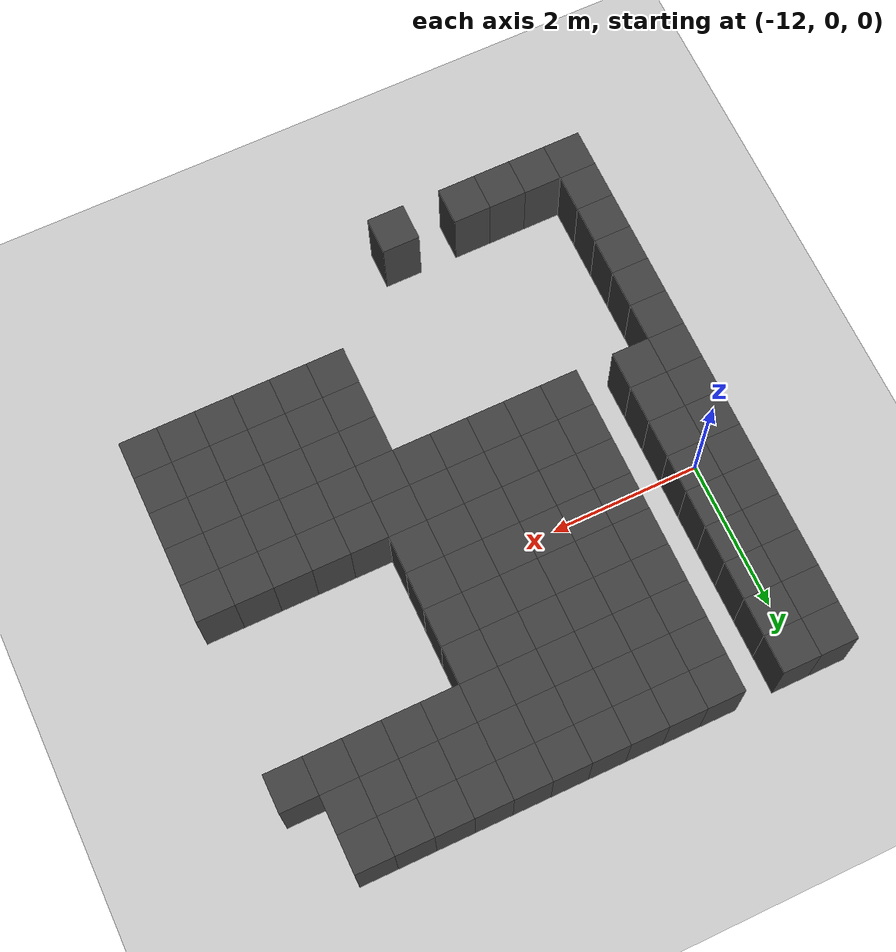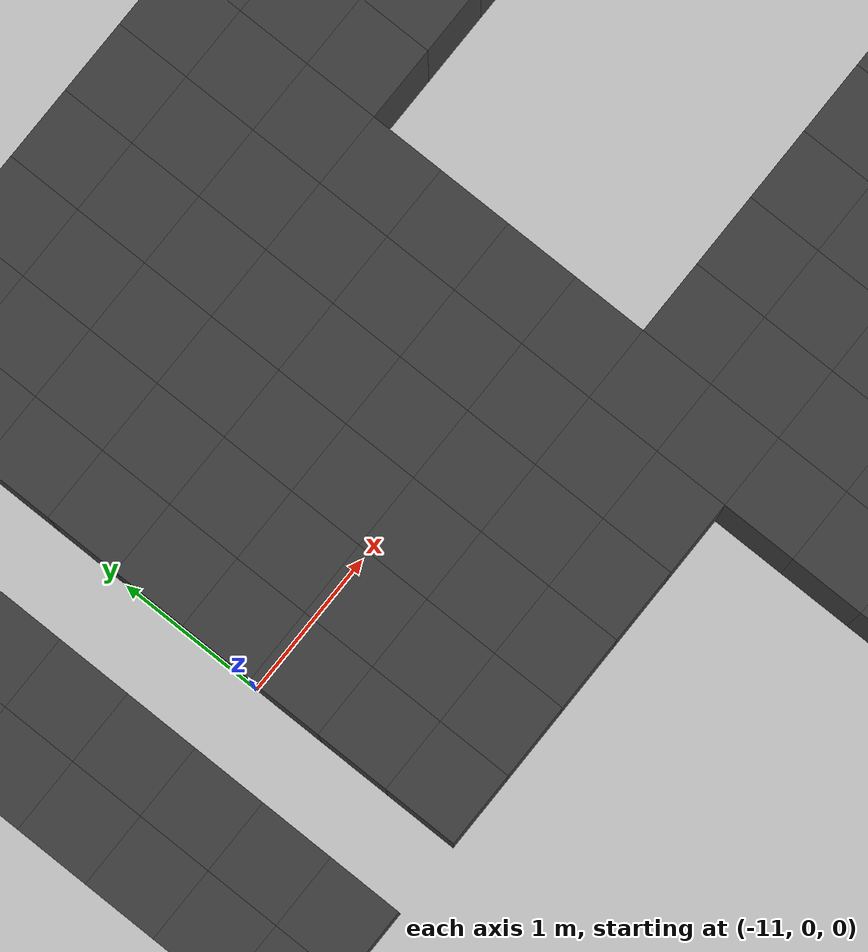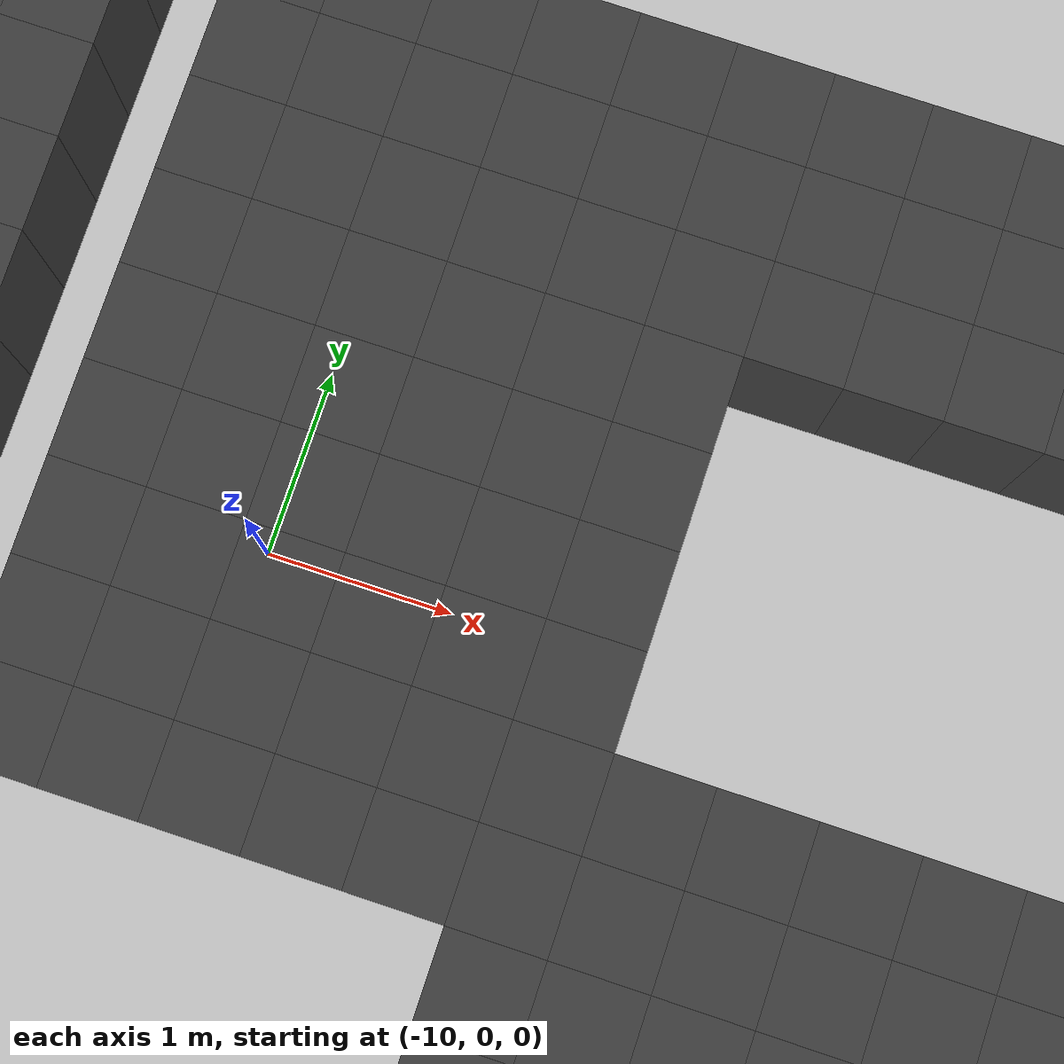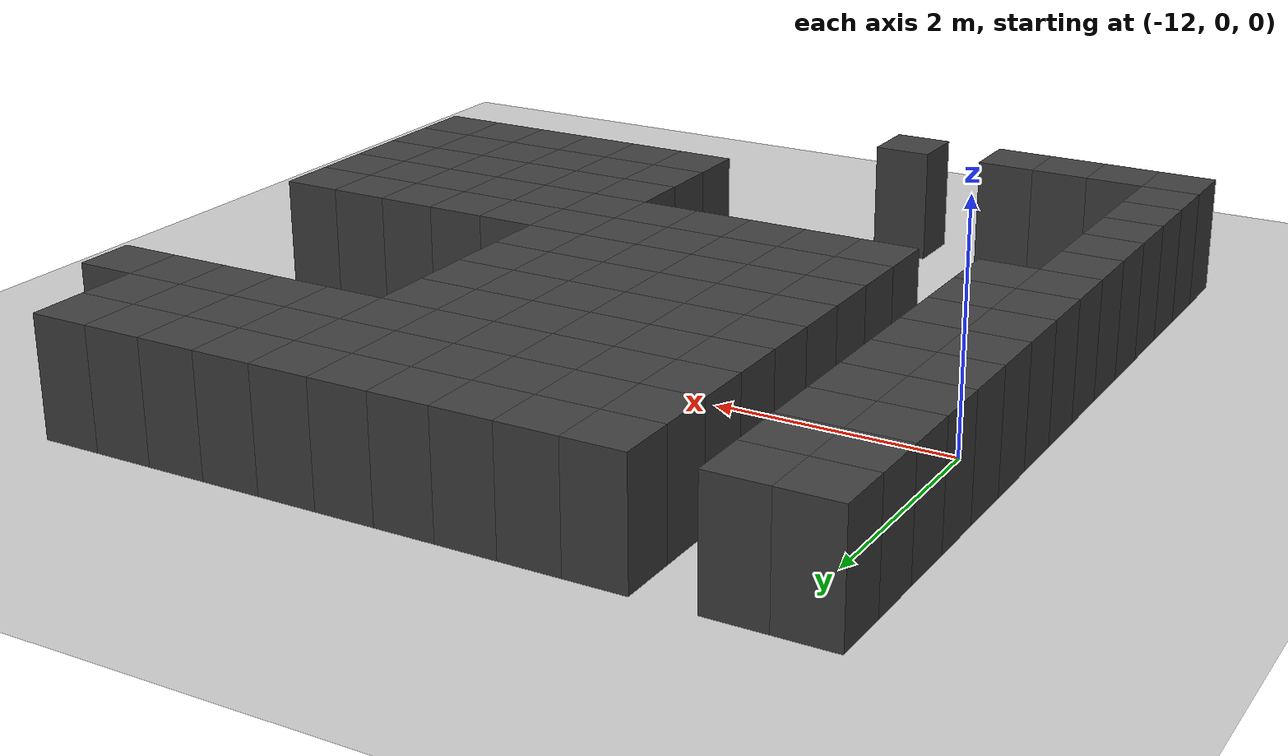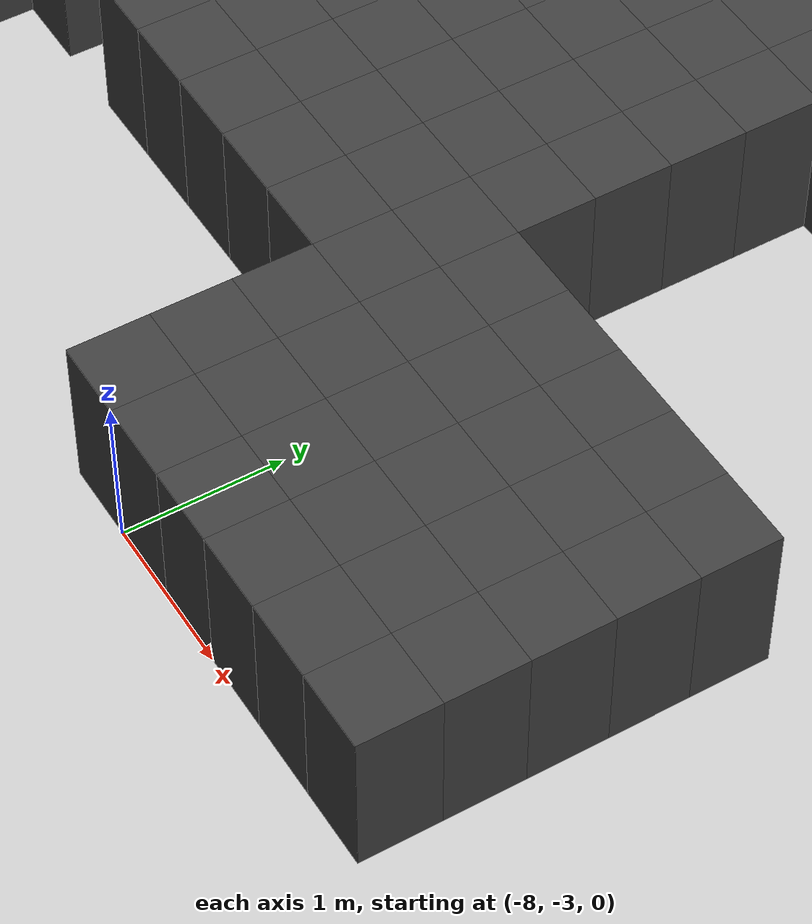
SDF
<sdf version="1.7">
 <world name="map_12818">
  <model name="ground_plane">
   <static>true</static>
   <link name="link">
    <collision name="collision">
     <geometry><plane><normal>0 0 1</normal><size>200 200</size></plane></geometry>
    </collision>
    <visual name="visual">
     <geometry><plane><normal>0 0 1</normal><size>200 200</size></plane></geometry>
     <material><ambient>0.8 0.8 0.8 1</ambient><diffuse>0.8 0.8 0.8 1</diffuse></material>
    </visual>
   </link>
  </model>
  <model name="maze_environment">
   <static>true</static>
   <link name="wall_883">
    <pose>-12.250 2.750 0.500 0 0 0</pose>
    <collision name="col"><geometry><box><size>0.5 0.5 1.0</size></box></geometry></collision>
    <visual name="vis">
     <geometry><box><size>0.5 0.5 1.0</size></box></geometry>
     <material><ambient>0.15 0.15 0.15 1</ambient><diffuse>0.25 0.25 0.25 1</diffuse></material>
    </visual>
   </link>
   <link name="wall_884">
    <pose>-11.750 2.750 0.500 0 0 0</pose>
    <collision name="col"><geometry><box><size>0.5 0.5 1.0</size></box></geometry></collision>
    <visual name="vis">
     <geometry><box><size>0.5 0.5 1.0</size></box></geometry>
     <material><ambient>0.15 0.15 0.15 1</ambient><diffuse>0.25 0.25 0.25 1</diffuse></material>
    </visual>
   </link>
   <link name="wall_885">
    <pose>-10.750 2.750 0.500 0 0 0</pose>
    <collision name="col"><geometry><box><size>0.5 0.5 1.0</size></box></geometry></collision>
    <visual name="vis">
     <geometry><box><size>0.5 0.5 1.0</size></box></geometry>
     <material><ambient>0.15 0.15 0.15 1</ambient><diffuse>0.25 0.25 0.25 1</diffuse></material>
    </visual>
   </link>
   <link name="wall_886">
    <pose>-10.250 2.750 0.500 0 0 0</pose>
    <collision name="col"><geometry><box><size>0.5 0.5 1.0</size></box></geometry></collision>
    <visual name="vis">
     <geometry><box><size>0.5 0.5 1.0</size></box></geometry>
     <material><ambient>0.15 0.15 0.15 1</ambient><diffuse>0.25 0.25 0.25 1</diffuse></material>
    </visual>
   </link>
   <link name="wall_887">
    <pose>-9.750 2.750 0.500 0 0 0</pose>
    <collision name="col"><geometry><box><size>0.5 0.5 1.0</size></box></geometry></collision>
    <visual name="vis">
     <geometry><box><size>0.5 0.5 1.0</size></box></geometry>
     <material><ambient>0.15 0.15 0.15 1</ambient><diffuse>0.25 0.25 0.25 1</diffuse></material>
    </visual>
   </link>
   <link name="wall_888">
    <pose>-9.250 2.750 0.500 0 0 0</pose>
    <collision name="col"><geometry><box><size>0.5 0.5 1.0</size></box></geometry></collision>
    <visual name="vis">
     <geometry><box><size>0.5 0.5 1.0</size></box></geometry>
     <material><ambient>0.15 0.15 0.15 1</ambient><diffuse>0.25 0.25 0.25 1</diffuse></material>
    </visual>
   </link>
   <link name="wall_889">
    <pose>-8.750 2.750 0.500 0 0 0</pose>
    <collision name="col"><geometry><box><size>0.5 0.5 1.0</size></box></geometry></collision>
    <visual name="vis">
     <geometry><box><size>0.5 0.5 1.0</size></box></geometry>
     <material><ambient>0.15 0.15 0.15 1</ambient><diffuse>0.25 0.25 0.25 1</diffuse></material>
    </visual>
   </link>
   <link name="wall_890">
    <pose>-8.250 2.750 0.500 0 0 0</pose>
    <collision name="col"><geometry><box><size>0.5 0.5 1.0</size></box></geometry></collision>
    <visual name="vis">
     <geometry><box><size>0.5 0.5 1.0</size></box></geometry>
     <material><ambient>0.15 0.15 0.15 1</ambient><diffuse>0.25 0.25 0.25 1</diffuse></material>
    </visual>
   </link>
   <link name="wall_891">
    <pose>-7.750 2.750 0.500 0 0 0</pose>
    <collision name="col"><geometry><box><size>0.5 0.5 1.0</size></box></geometry></collision>
    <visual name="vis">
     <geometry><box><size>0.5 0.5 1.0</size></box></geometry>
     <material><ambient>0.15 0.15 0.15 1</ambient><diffuse>0.25 0.25 0.25 1</diffuse></material>
    </visual>
   </link>
   <link name="wall_892">
    <pose>-7.250 2.750 0.500 0 0 0</pose>
    <collision name="col"><geometry><box><size>0.5 0.5 1.0</size></box></geometry></collision>
    <visual name="vis">
     <geometry><box><size>0.5 0.5 1.0</size></box></geometry>
     <material><ambient>0.15 0.15 0.15 1</ambient><diffuse>0.25 0.25 0.25 1</diffuse></material>
    </visual>
   </link>
   <link name="wall_893">
    <pose>-6.750 2.750 0.500 0 0 0</pose>
    <collision name="col"><geometry><box><size>0.5 0.5 1.0</size></box></geometry></collision>
    <visual name="vis">
     <geometry><box><size>0.5 0.5 1.0</size></box></geometry>
     <material><ambient>0.15 0.15 0.15 1</ambient><diffuse>0.25 0.25 0.25 1</diffuse></material>
    </visual>
   </link>
   <link name="wall_894">
    <pose>-6.250 2.750 0.500 0 0 0</pose>
    <collision name="col"><geometry><box><size>0.5 0.5 1.0</size></box></geometry></collision>
    <visual name="vis">
     <geometry><box><size>0.5 0.5 1.0</size></box></geometry>
     <material><ambient>0.15 0.15 0.15 1</ambient><diffuse>0.25 0.25 0.25 1</diffuse></material>
    </visual>
   </link>
   <link name="wall_924">
    <pose>-12.250 2.250 0.500 0 0 0</pose>
    <collision name="col"><geometry><box><size>0.5 0.5 1.0</size></box></geometry></collision>
    <visual name="vis">
     <geometry><box><size>0.5 0.5 1.0</size></box></geometry>
     <material><ambient>0.15 0.15 0.15 1</ambient><diffuse>0.25 0.25 0.25 1</diffuse></material>
    </visual>
   </link>
   <link name="wall_925">
    <pose>-11.750 2.250 0.500 0 0 0</pose>
    <collision name="col"><geometry><box><size>0.5 0.5 1.0</size></box></geometry></collision>
    <visual name="vis">
     <geometry><box><size>0.5 0.5 1.0</size></box></geometry>
     <material><ambient>0.15 0.15 0.15 1</ambient><diffuse>0.25 0.25 0.25 1</diffuse></material>
    </visual>
   </link>
   <link name="wall_926">
    <pose>-10.750 2.250 0.500 0 0 0</pose>
    <collision name="col"><geometry><box><size>0.5 0.5 1.0</size></box></geometry></collision>
    <visual name="vis">
     <geometry><box><size>0.5 0.5 1.0</size></box></geometry>
     <material><ambient>0.15 0.15 0.15 1</ambient><diffuse>0.25 0.25 0.25 1</diffuse></material>
    </visual>
   </link>
   <link name="wall_927">
    <pose>-10.250 2.250 0.500 0 0 0</pose>
    <collision name="col"><geometry><box><size>0.5 0.5 1.0</size></box></geometry></collision>
    <visual name="vis">
     <geometry><box><size>0.5 0.5 1.0</size></box></geometry>
     <material><ambient>0.15 0.15 0.15 1</ambient><diffuse>0.25 0.25 0.25 1</diffuse></material>
    </visual>
   </link>
   <link name="wall_928">
    <pose>-9.750 2.250 0.500 0 0 0</pose>
    <collision name="col"><geometry><box><size>0.5 0.5 1.0</size></box></geometry></collision>
    <visual name="vis">
     <geometry><box><size>0.5 0.5 1.0</size></box></geometry>
     <material><ambient>0.15 0.15 0.15 1</ambient><diffuse>0.25 0.25 0.25 1</diffuse></material>
    </visual>
   </link>
   <link name="wall_929">
    <pose>-9.250 2.250 0.500 0 0 0</pose>
    <collision name="col"><geometry><box><size>0.5 0.5 1.0</size></box></geometry></collision>
    <visual name="vis">
     <geometry><box><size>0.5 0.5 1.0</size></box></geometry>
     <material><ambient>0.15 0.15 0.15 1</ambient><diffuse>0.25 0.25 0.25 1</diffuse></material>
    </visual>
   </link>
   <link name="wall_930">
    <pose>-8.750 2.250 0.500 0 0 0</pose>
    <collision name="col"><geometry><box><size>0.5 0.5 1.0</size></box></geometry></collision>
    <visual name="vis">
     <geometry><box><size>0.5 0.5 1.0</size></box></geometry>
     <material><ambient>0.15 0.15 0.15 1</ambient><diffuse>0.25 0.25 0.25 1</diffuse></material>
    </visual>
   </link>
   <link name="wall_931">
    <pose>-8.250 2.250 0.500 0 0 0</pose>
    <collision name="col"><geometry><box><size>0.5 0.5 1.0</size></box></geometry></collision>
    <visual name="vis">
     <geometry><box><size>0.5 0.5 1.0</size></box></geometry>
     <material><ambient>0.15 0.15 0.15 1</ambient><diffuse>0.25 0.25 0.25 1</diffuse></material>
    </visual>
   </link>
   <link name="wall_932">
    <pose>-7.750 2.250 0.500 0 0 0</pose>
    <collision name="col"><geometry><box><size>0.5 0.5 1.0</size></box></geometry></collision>
    <visual name="vis">
     <geometry><box><size>0.5 0.5 1.0</size></box></geometry>
     <material><ambient>0.15 0.15 0.15 1</ambient><diffuse>0.25 0.25 0.25 1</diffuse></material>
    </visual>
   </link>
   <link name="wall_933">
    <pose>-7.250 2.250 0.500 0 0 0</pose>
    <collision name="col"><geometry><box><size>0.5 0.5 1.0</size></box></geometry></collision>
    <visual name="vis">
     <geometry><box><size>0.5 0.5 1.0</size></box></geometry>
     <material><ambient>0.15 0.15 0.15 1</ambient><diffuse>0.25 0.25 0.25 1</diffuse></material>
    </visual>
   </link>
   <link name="wall_934">
    <pose>-6.750 2.250 0.500 0 0 0</pose>
    <collision name="col"><geometry><box><size>0.5 0.5 1.0</size></box></geometry></collision>
    <visual name="vis">
     <geometry><box><size>0.5 0.5 1.0</size></box></geometry>
     <material><ambient>0.15 0.15 0.15 1</ambient><diffuse>0.25 0.25 0.25 1</diffuse></material>
    </visual>
   </link>
   <link name="wall_935">
    <pose>-6.250 2.250 0.500 0 0 0</pose>
    <collision name="col"><geometry><box><size>0.5 0.5 1.0</size></box></geometry></collision>
    <visual name="vis">
     <geometry><box><size>0.5 0.5 1.0</size></box></geometry>
     <material><ambient>0.15 0.15 0.15 1</ambient><diffuse>0.25 0.25 0.25 1</diffuse></material>
    </visual>
   </link>
   <link name="wall_965">
    <pose>-12.250 1.750 0.500 0 0 0</pose>
    <collision name="col"><geometry><box><size>0.5 0.5 1.0</size></box></geometry></collision>
    <visual name="vis">
     <geometry><box><size>0.5 0.5 1.0</size></box></geometry>
     <material><ambient>0.15 0.15 0.15 1</ambient><diffuse>0.25 0.25 0.25 1</diffuse></material>
    </visual>
   </link>
   <link name="wall_966">
    <pose>-11.750 1.750 0.500 0 0 0</pose>
    <collision name="col"><geometry><box><size>0.5 0.5 1.0</size></box></geometry></collision>
    <visual name="vis">
     <geometry><box><size>0.5 0.5 1.0</size></box></geometry>
     <material><ambient>0.15 0.15 0.15 1</ambient><diffuse>0.25 0.25 0.25 1</diffuse></material>
    </visual>
   </link>
   <link name="wall_967">
    <pose>-10.750 1.750 0.500 0 0 0</pose>
    <collision name="col"><geometry><box><size>0.5 0.5 1.0</size></box></geometry></collision>
    <visual name="vis">
     <geometry><box><size>0.5 0.5 1.0</size></box></geometry>
     <material><ambient>0.15 0.15 0.15 1</ambient><diffuse>0.25 0.25 0.25 1</diffuse></material>
    </visual>
   </link>
   <link name="wall_968">
    <pose>-10.250 1.750 0.500 0 0 0</pose>
    <collision name="col"><geometry><box><size>0.5 0.5 1.0</size></box></geometry></collision>
    <visual name="vis">
     <geometry><box><size>0.5 0.5 1.0</size></box></geometry>
     <material><ambient>0.15 0.15 0.15 1</ambient><diffuse>0.25 0.25 0.25 1</diffuse></material>
    </visual>
   </link>
   <link name="wall_969">
    <pose>-9.750 1.750 0.500 0 0 0</pose>
    <collision name="col"><geometry><box><size>0.5 0.5 1.0</size></box></geometry></collision>
    <visual name="vis">
     <geometry><box><size>0.5 0.5 1.0</size></box></geometry>
     <material><ambient>0.15 0.15 0.15 1</ambient><diffuse>0.25 0.25 0.25 1</diffuse></material>
    </visual>
   </link>
   <link name="wall_970">
    <pose>-9.250 1.750 0.500 0 0 0</pose>
    <collision name="col"><geometry><box><size>0.5 0.5 1.0</size></box></geometry></collision>
    <visual name="vis">
     <geometry><box><size>0.5 0.5 1.0</size></box></geometry>
     <material><ambient>0.15 0.15 0.15 1</ambient><diffuse>0.25 0.25 0.25 1</diffuse></material>
    </visual>
   </link>
   <link name="wall_971">
    <pose>-8.750 1.750 0.500 0 0 0</pose>
    <collision name="col"><geometry><box><size>0.5 0.5 1.0</size></box></geometry></collision>
    <visual name="vis">
     <geometry><box><size>0.5 0.5 1.0</size></box></geometry>
     <material><ambient>0.15 0.15 0.15 1</ambient><diffuse>0.25 0.25 0.25 1</diffuse></material>
    </visual>
   </link>
   <link name="wall_972">
    <pose>-8.250 1.750 0.500 0 0 0</pose>
    <collision name="col"><geometry><box><size>0.5 0.5 1.0</size></box></geometry></collision>
    <visual name="vis">
     <geometry><box><size>0.5 0.5 1.0</size></box></geometry>
     <material><ambient>0.15 0.15 0.15 1</ambient><diffuse>0.25 0.25 0.25 1</diffuse></material>
    </visual>
   </link>
   <link name="wall_973">
    <pose>-7.750 1.750 0.500 0 0 0</pose>
    <collision name="col"><geometry><box><size>0.5 0.5 1.0</size></box></geometry></collision>
    <visual name="vis">
     <geometry><box><size>0.5 0.5 1.0</size></box></geometry>
     <material><ambient>0.15 0.15 0.15 1</ambient><diffuse>0.25 0.25 0.25 1</diffuse></material>
    </visual>
   </link>
   <link name="wall_974">
    <pose>-7.250 1.750 0.500 0 0 0</pose>
    <collision name="col"><geometry><box><size>0.5 0.5 1.0</size></box></geometry></collision>
    <visual name="vis">
     <geometry><box><size>0.5 0.5 1.0</size></box></geometry>
     <material><ambient>0.15 0.15 0.15 1</ambient><diffuse>0.25 0.25 0.25 1</diffuse></material>
    </visual>
   </link>
   <link name="wall_975">
    <pose>-6.750 1.750 0.500 0 0 0</pose>
    <collision name="col"><geometry><box><size>0.5 0.5 1.0</size></box></geometry></collision>
    <visual name="vis">
     <geometry><box><size>0.5 0.5 1.0</size></box></geometry>
     <material><ambient>0.15 0.15 0.15 1</ambient><diffuse>0.25 0.25 0.25 1</diffuse></material>
    </visual>
   </link>
   <link name="wall_976">
    <pose>-6.250 1.750 0.500 0 0 0</pose>
    <collision name="col"><geometry><box><size>0.5 0.5 1.0</size></box></geometry></collision>
    <visual name="vis">
     <geometry><box><size>0.5 0.5 1.0</size></box></geometry>
     <material><ambient>0.15 0.15 0.15 1</ambient><diffuse>0.25 0.25 0.25 1</diffuse></material>
    </visual>
   </link>
   <link name="wall_977">
    <pose>-5.750 1.750 0.500 0 0 0</pose>
    <collision name="col"><geometry><box><size>0.5 0.5 1.0</size></box></geometry></collision>
    <visual name="vis">
     <geometry><box><size>0.5 0.5 1.0</size></box></geometry>
     <material><ambient>0.15 0.15 0.15 1</ambient><diffuse>0.25 0.25 0.25 1</diffuse></material>
    </visual>
   </link>
   <link name="wall_1003">
    <pose>-12.250 1.250 0.500 0 0 0</pose>
    <collision name="col"><geometry><box><size>0.5 0.5 1.0</size></box></geometry></collision>
    <visual name="vis">
     <geometry><box><size>0.5 0.5 1.0</size></box></geometry>
     <material><ambient>0.15 0.15 0.15 1</ambient><diffuse>0.25 0.25 0.25 1</diffuse></material>
    </visual>
   </link>
   <link name="wall_1004">
    <pose>-11.750 1.250 0.500 0 0 0</pose>
    <collision name="col"><geometry><box><size>0.5 0.5 1.0</size></box></geometry></collision>
    <visual name="vis">
     <geometry><box><size>0.5 0.5 1.0</size></box></geometry>
     <material><ambient>0.15 0.15 0.15 1</ambient><diffuse>0.25 0.25 0.25 1</diffuse></material>
    </visual>
   </link>
   <link name="wall_1005">
    <pose>-10.750 1.250 0.500 0 0 0</pose>
    <collision name="col"><geometry><box><size>0.5 0.5 1.0</size></box></geometry></collision>
    <visual name="vis">
     <geometry><box><size>0.5 0.5 1.0</size></box></geometry>
     <material><ambient>0.15 0.15 0.15 1</ambient><diffuse>0.25 0.25 0.25 1</diffuse></material>
    </visual>
   </link>
   <link name="wall_1006">
    <pose>-10.250 1.250 0.500 0 0 0</pose>
    <collision name="col"><geometry><box><size>0.5 0.5 1.0</size></box></geometry></collision>
    <visual name="vis">
     <geometry><box><size>0.5 0.5 1.0</size></box></geometry>
     <material><ambient>0.15 0.15 0.15 1</ambient><diffuse>0.25 0.25 0.25 1</diffuse></material>
    </visual>
   </link>
   <link name="wall_1007">
    <pose>-9.750 1.250 0.500 0 0 0</pose>
    <collision name="col"><geometry><box><size>0.5 0.5 1.0</size></box></geometry></collision>
    <visual name="vis">
     <geometry><box><size>0.5 0.5 1.0</size></box></geometry>
     <material><ambient>0.15 0.15 0.15 1</ambient><diffuse>0.25 0.25 0.25 1</diffuse></material>
    </visual>
   </link>
   <link name="wall_1008">
    <pose>-9.250 1.250 0.500 0 0 0</pose>
    <collision name="col"><geometry><box><size>0.5 0.5 1.0</size></box></geometry></collision>
    <visual name="vis">
     <geometry><box><size>0.5 0.5 1.0</size></box></geometry>
     <material><ambient>0.15 0.15 0.15 1</ambient><diffuse>0.25 0.25 0.25 1</diffuse></material>
    </visual>
   </link>
   <link name="wall_1009">
    <pose>-8.750 1.250 0.500 0 0 0</pose>
    <collision name="col"><geometry><box><size>0.5 0.5 1.0</size></box></geometry></collision>
    <visual name="vis">
     <geometry><box><size>0.5 0.5 1.0</size></box></geometry>
     <material><ambient>0.15 0.15 0.15 1</ambient><diffuse>0.25 0.25 0.25 1</diffuse></material>
    </visual>
   </link>
   <link name="wall_1010">
    <pose>-8.250 1.250 0.500 0 0 0</pose>
    <collision name="col"><geometry><box><size>0.5 0.5 1.0</size></box></geometry></collision>
    <visual name="vis">
     <geometry><box><size>0.5 0.5 1.0</size></box></geometry>
     <material><ambient>0.15 0.15 0.15 1</ambient><diffuse>0.25 0.25 0.25 1</diffuse></material>
    </visual>
   </link>
   <link name="wall_1037">
    <pose>-12.250 0.750 0.500 0 0 0</pose>
    <collision name="col"><geometry><box><size>0.5 0.5 1.0</size></box></geometry></collision>
    <visual name="vis">
     <geometry><box><size>0.5 0.5 1.0</size></box></geometry>
     <material><ambient>0.15 0.15 0.15 1</ambient><diffuse>0.25 0.25 0.25 1</diffuse></material>
    </visual>
   </link>
   <link name="wall_1038">
    <pose>-11.750 0.750 0.500 0 0 0</pose>
    <collision name="col"><geometry><box><size>0.5 0.5 1.0</size></box></geometry></collision>
    <visual name="vis">
     <geometry><box><size>0.5 0.5 1.0</size></box></geometry>
     <material><ambient>0.15 0.15 0.15 1</ambient><diffuse>0.25 0.25 0.25 1</diffuse></material>
    </visual>
   </link>
   <link name="wall_1039">
    <pose>-10.750 0.750 0.500 0 0 0</pose>
    <collision name="col"><geometry><box><size>0.5 0.5 1.0</size></box></geometry></collision>
    <visual name="vis">
     <geometry><box><size>0.5 0.5 1.0</size></box></geometry>
     <material><ambient>0.15 0.15 0.15 1</ambient><diffuse>0.25 0.25 0.25 1</diffuse></material>
    </visual>
   </link>
   <link name="wall_1040">
    <pose>-10.250 0.750 0.500 0 0 0</pose>
    <collision name="col"><geometry><box><size>0.5 0.5 1.0</size></box></geometry></collision>
    <visual name="vis">
     <geometry><box><size>0.5 0.5 1.0</size></box></geometry>
     <material><ambient>0.15 0.15 0.15 1</ambient><diffuse>0.25 0.25 0.25 1</diffuse></material>
    </visual>
   </link>
   <link name="wall_1041">
    <pose>-9.750 0.750 0.500 0 0 0</pose>
    <collision name="col"><geometry><box><size>0.5 0.5 1.0</size></box></geometry></collision>
    <visual name="vis">
     <geometry><box><size>0.5 0.5 1.0</size></box></geometry>
     <material><ambient>0.15 0.15 0.15 1</ambient><diffuse>0.25 0.25 0.25 1</diffuse></material>
    </visual>
   </link>
   <link name="wall_1042">
    <pose>-9.250 0.750 0.500 0 0 0</pose>
    <collision name="col"><geometry><box><size>0.5 0.5 1.0</size></box></geometry></collision>
    <visual name="vis">
     <geometry><box><size>0.5 0.5 1.0</size></box></geometry>
     <material><ambient>0.15 0.15 0.15 1</ambient><diffuse>0.25 0.25 0.25 1</diffuse></material>
    </visual>
   </link>
   <link name="wall_1043">
    <pose>-8.750 0.750 0.500 0 0 0</pose>
    <collision name="col"><geometry><box><size>0.5 0.5 1.0</size></box></geometry></collision>
    <visual name="vis">
     <geometry><box><size>0.5 0.5 1.0</size></box></geometry>
     <material><ambient>0.15 0.15 0.15 1</ambient><diffuse>0.25 0.25 0.25 1</diffuse></material>
    </visual>
   </link>
   <link name="wall_1044">
    <pose>-8.250 0.750 0.500 0 0 0</pose>
    <collision name="col"><geometry><box><size>0.5 0.5 1.0</size></box></geometry></collision>
    <visual name="vis">
     <geometry><box><size>0.5 0.5 1.0</size></box></geometry>
     <material><ambient>0.15 0.15 0.15 1</ambient><diffuse>0.25 0.25 0.25 1</diffuse></material>
    </visual>
   </link>
   <link name="wall_1067">
    <pose>-12.250 0.250 0.500 0 0 0</pose>
    <collision name="col"><geometry><box><size>0.5 0.5 1.0</size></box></geometry></collision>
    <visual name="vis">
     <geometry><box><size>0.5 0.5 1.0</size></box></geometry>
     <material><ambient>0.15 0.15 0.15 1</ambient><diffuse>0.25 0.25 0.25 1</diffuse></material>
    </visual>
   </link>
   <link name="wall_1068">
    <pose>-11.750 0.250 0.500 0 0 0</pose>
    <collision name="col"><geometry><box><size>0.5 0.5 1.0</size></box></geometry></collision>
    <visual name="vis">
     <geometry><box><size>0.5 0.5 1.0</size></box></geometry>
     <material><ambient>0.15 0.15 0.15 1</ambient><diffuse>0.25 0.25 0.25 1</diffuse></material>
    </visual>
   </link>
   <link name="wall_1069">
    <pose>-10.750 0.250 0.500 0 0 0</pose>
    <collision name="col"><geometry><box><size>0.5 0.5 1.0</size></box></geometry></collision>
    <visual name="vis">
     <geometry><box><size>0.5 0.5 1.0</size></box></geometry>
     <material><ambient>0.15 0.15 0.15 1</ambient><diffuse>0.25 0.25 0.25 1</diffuse></material>
    </visual>
   </link>
   <link name="wall_1070">
    <pose>-10.250 0.250 0.500 0 0 0</pose>
    <collision name="col"><geometry><box><size>0.5 0.5 1.0</size></box></geometry></collision>
    <visual name="vis">
     <geometry><box><size>0.5 0.5 1.0</size></box></geometry>
     <material><ambient>0.15 0.15 0.15 1</ambient><diffuse>0.25 0.25 0.25 1</diffuse></material>
    </visual>
   </link>
   <link name="wall_1071">
    <pose>-9.750 0.250 0.500 0 0 0</pose>
    <collision name="col"><geometry><box><size>0.5 0.5 1.0</size></box></geometry></collision>
    <visual name="vis">
     <geometry><box><size>0.5 0.5 1.0</size></box></geometry>
     <material><ambient>0.15 0.15 0.15 1</ambient><diffuse>0.25 0.25 0.25 1</diffuse></material>
    </visual>
   </link>
   <link name="wall_1072">
    <pose>-9.250 0.250 0.500 0 0 0</pose>
    <collision name="col"><geometry><box><size>0.5 0.5 1.0</size></box></geometry></collision>
    <visual name="vis">
     <geometry><box><size>0.5 0.5 1.0</size></box></geometry>
     <material><ambient>0.15 0.15 0.15 1</ambient><diffuse>0.25 0.25 0.25 1</diffuse></material>
    </visual>
   </link>
   <link name="wall_1073">
    <pose>-8.750 0.250 0.500 0 0 0</pose>
    <collision name="col"><geometry><box><size>0.5 0.5 1.0</size></box></geometry></collision>
    <visual name="vis">
     <geometry><box><size>0.5 0.5 1.0</size></box></geometry>
     <material><ambient>0.15 0.15 0.15 1</ambient><diffuse>0.25 0.25 0.25 1</diffuse></material>
    </visual>
   </link>
   <link name="wall_1074">
    <pose>-8.250 0.250 0.500 0 0 0</pose>
    <collision name="col"><geometry><box><size>0.5 0.5 1.0</size></box></geometry></collision>
    <visual name="vis">
     <geometry><box><size>0.5 0.5 1.0</size></box></geometry>
     <material><ambient>0.15 0.15 0.15 1</ambient><diffuse>0.25 0.25 0.25 1</diffuse></material>
    </visual>
   </link>
   <link name="wall_1097">
    <pose>-12.250 -0.250 0.500 0 0 0</pose>
    <collision name="col"><geometry><box><size>0.5 0.5 1.0</size></box></geometry></collision>
    <visual name="vis">
     <geometry><box><size>0.5 0.5 1.0</size></box></geometry>
     <material><ambient>0.15 0.15 0.15 1</ambient><diffuse>0.25 0.25 0.25 1</diffuse></material>
    </visual>
   </link>
   <link name="wall_1098">
    <pose>-11.750 -0.250 0.500 0 0 0</pose>
    <collision name="col"><geometry><box><size>0.5 0.5 1.0</size></box></geometry></collision>
    <visual name="vis">
     <geometry><box><size>0.5 0.5 1.0</size></box></geometry>
     <material><ambient>0.15 0.15 0.15 1</ambient><diffuse>0.25 0.25 0.25 1</diffuse></material>
    </visual>
   </link>
   <link name="wall_1099">
    <pose>-10.750 -0.250 0.500 0 0 0</pose>
    <collision name="col"><geometry><box><size>0.5 0.5 1.0</size></box></geometry></collision>
    <visual name="vis">
     <geometry><box><size>0.5 0.5 1.0</size></box></geometry>
     <material><ambient>0.15 0.15 0.15 1</ambient><diffuse>0.25 0.25 0.25 1</diffuse></material>
    </visual>
   </link>
   <link name="wall_1100">
    <pose>-10.250 -0.250 0.500 0 0 0</pose>
    <collision name="col"><geometry><box><size>0.5 0.5 1.0</size></box></geometry></collision>
    <visual name="vis">
     <geometry><box><size>0.5 0.5 1.0</size></box></geometry>
     <material><ambient>0.15 0.15 0.15 1</ambient><diffuse>0.25 0.25 0.25 1</diffuse></material>
    </visual>
   </link>
   <link name="wall_1101">
    <pose>-9.750 -0.250 0.500 0 0 0</pose>
    <collision name="col"><geometry><box><size>0.5 0.5 1.0</size></box></geometry></collision>
    <visual name="vis">
     <geometry><box><size>0.5 0.5 1.0</size></box></geometry>
     <material><ambient>0.15 0.15 0.15 1</ambient><diffuse>0.25 0.25 0.25 1</diffuse></material>
    </visual>
   </link>
   <link name="wall_1102">
    <pose>-9.250 -0.250 0.500 0 0 0</pose>
    <collision name="col"><geometry><box><size>0.5 0.5 1.0</size></box></geometry></collision>
    <visual name="vis">
     <geometry><box><size>0.5 0.5 1.0</size></box></geometry>
     <material><ambient>0.15 0.15 0.15 1</ambient><diffuse>0.25 0.25 0.25 1</diffuse></material>
    </visual>
   </link>
   <link name="wall_1103">
    <pose>-8.750 -0.250 0.500 0 0 0</pose>
    <collision name="col"><geometry><box><size>0.5 0.5 1.0</size></box></geometry></collision>
    <visual name="vis">
     <geometry><box><size>0.5 0.5 1.0</size></box></geometry>
     <material><ambient>0.15 0.15 0.15 1</ambient><diffuse>0.25 0.25 0.25 1</diffuse></material>
    </visual>
   </link>
   <link name="wall_1104">
    <pose>-8.250 -0.250 0.500 0 0 0</pose>
    <collision name="col"><geometry><box><size>0.5 0.5 1.0</size></box></geometry></collision>
    <visual name="vis">
     <geometry><box><size>0.5 0.5 1.0</size></box></geometry>
     <material><ambient>0.15 0.15 0.15 1</ambient><diffuse>0.25 0.25 0.25 1</diffuse></material>
    </visual>
   </link>
   <link name="wall_1135">
    <pose>-12.250 -0.750 0.500 0 0 0</pose>
    <collision name="col"><geometry><box><size>0.5 0.5 1.0</size></box></geometry></collision>
    <visual name="vis">
     <geometry><box><size>0.5 0.5 1.0</size></box></geometry>
     <material><ambient>0.15 0.15 0.15 1</ambient><diffuse>0.25 0.25 0.25 1</diffuse></material>
    </visual>
   </link>
   <link name="wall_1136">
    <pose>-11.750 -0.750 0.500 0 0 0</pose>
    <collision name="col"><geometry><box><size>0.5 0.5 1.0</size></box></geometry></collision>
    <visual name="vis">
     <geometry><box><size>0.5 0.5 1.0</size></box></geometry>
     <material><ambient>0.15 0.15 0.15 1</ambient><diffuse>0.25 0.25 0.25 1</diffuse></material>
    </visual>
   </link>
   <link name="wall_1137">
    <pose>-10.750 -0.750 0.500 0 0 0</pose>
    <collision name="col"><geometry><box><size>0.5 0.5 1.0</size></box></geometry></collision>
    <visual name="vis">
     <geometry><box><size>0.5 0.5 1.0</size></box></geometry>
     <material><ambient>0.15 0.15 0.15 1</ambient><diffuse>0.25 0.25 0.25 1</diffuse></material>
    </visual>
   </link>
   <link name="wall_1138">
    <pose>-10.250 -0.750 0.500 0 0 0</pose>
    <collision name="col"><geometry><box><size>0.5 0.5 1.0</size></box></geometry></collision>
    <visual name="vis">
     <geometry><box><size>0.5 0.5 1.0</size></box></geometry>
     <material><ambient>0.15 0.15 0.15 1</ambient><diffuse>0.25 0.25 0.25 1</diffuse></material>
    </visual>
   </link>
   <link name="wall_1139">
    <pose>-9.750 -0.750 0.500 0 0 0</pose>
    <collision name="col"><geometry><box><size>0.5 0.5 1.0</size></box></geometry></collision>
    <visual name="vis">
     <geometry><box><size>0.5 0.5 1.0</size></box></geometry>
     <material><ambient>0.15 0.15 0.15 1</ambient><diffuse>0.25 0.25 0.25 1</diffuse></material>
    </visual>
   </link>
   <link name="wall_1140">
    <pose>-9.250 -0.750 0.500 0 0 0</pose>
    <collision name="col"><geometry><box><size>0.5 0.5 1.0</size></box></geometry></collision>
    <visual name="vis">
     <geometry><box><size>0.5 0.5 1.0</size></box></geometry>
     <material><ambient>0.15 0.15 0.15 1</ambient><diffuse>0.25 0.25 0.25 1</diffuse></material>
    </visual>
   </link>
   <link name="wall_1141">
    <pose>-8.750 -0.750 0.500 0 0 0</pose>
    <collision name="col"><geometry><box><size>0.5 0.5 1.0</size></box></geometry></collision>
    <visual name="vis">
     <geometry><box><size>0.5 0.5 1.0</size></box></geometry>
     <material><ambient>0.15 0.15 0.15 1</ambient><diffuse>0.25 0.25 0.25 1</diffuse></material>
    </visual>
   </link>
   <link name="wall_1142">
    <pose>-8.250 -0.750 0.500 0 0 0</pose>
    <collision name="col"><geometry><box><size>0.5 0.5 1.0</size></box></geometry></collision>
    <visual name="vis">
     <geometry><box><size>0.5 0.5 1.0</size></box></geometry>
     <material><ambient>0.15 0.15 0.15 1</ambient><diffuse>0.25 0.25 0.25 1</diffuse></material>
    </visual>
   </link>
   <link name="wall_1143">
    <pose>-7.750 -0.750 0.500 0 0 0</pose>
    <collision name="col"><geometry><box><size>0.5 0.5 1.0</size></box></geometry></collision>
    <visual name="vis">
     <geometry><box><size>0.5 0.5 1.0</size></box></geometry>
     <material><ambient>0.15 0.15 0.15 1</ambient><diffuse>0.25 0.25 0.25 1</diffuse></material>
    </visual>
   </link>
   <link name="wall_1144">
    <pose>-7.250 -0.750 0.500 0 0 0</pose>
    <collision name="col"><geometry><box><size>0.5 0.5 1.0</size></box></geometry></collision>
    <visual name="vis">
     <geometry><box><size>0.5 0.5 1.0</size></box></geometry>
     <material><ambient>0.15 0.15 0.15 1</ambient><diffuse>0.25 0.25 0.25 1</diffuse></material>
    </visual>
   </link>
   <link name="wall_1145">
    <pose>-6.750 -0.750 0.500 0 0 0</pose>
    <collision name="col"><geometry><box><size>0.5 0.5 1.0</size></box></geometry></collision>
    <visual name="vis">
     <geometry><box><size>0.5 0.5 1.0</size></box></geometry>
     <material><ambient>0.15 0.15 0.15 1</ambient><diffuse>0.25 0.25 0.25 1</diffuse></material>
    </visual>
   </link>
   <link name="wall_1146">
    <pose>-6.250 -0.750 0.500 0 0 0</pose>
    <collision name="col"><geometry><box><size>0.5 0.5 1.0</size></box></geometry></collision>
    <visual name="vis">
     <geometry><box><size>0.5 0.5 1.0</size></box></geometry>
     <material><ambient>0.15 0.15 0.15 1</ambient><diffuse>0.25 0.25 0.25 1</diffuse></material>
    </visual>
   </link>
   <link name="wall_1147">
    <pose>-5.750 -0.750 0.500 0 0 0</pose>
    <collision name="col"><geometry><box><size>0.5 0.5 1.0</size></box></geometry></collision>
    <visual name="vis">
     <geometry><box><size>0.5 0.5 1.0</size></box></geometry>
     <material><ambient>0.15 0.15 0.15 1</ambient><diffuse>0.25 0.25 0.25 1</diffuse></material>
    </visual>
   </link>
   <link name="wall_1178">
    <pose>-12.250 -1.250 0.500 0 0 0</pose>
    <collision name="col"><geometry><box><size>0.5 0.5 1.0</size></box></geometry></collision>
    <visual name="vis">
     <geometry><box><size>0.5 0.5 1.0</size></box></geometry>
     <material><ambient>0.15 0.15 0.15 1</ambient><diffuse>0.25 0.25 0.25 1</diffuse></material>
    </visual>
   </link>
   <link name="wall_1179">
    <pose>-11.750 -1.250 0.500 0 0 0</pose>
    <collision name="col"><geometry><box><size>0.5 0.5 1.0</size></box></geometry></collision>
    <visual name="vis">
     <geometry><box><size>0.5 0.5 1.0</size></box></geometry>
     <material><ambient>0.15 0.15 0.15 1</ambient><diffuse>0.25 0.25 0.25 1</diffuse></material>
    </visual>
   </link>
   <link name="wall_1180">
    <pose>-10.750 -1.250 0.500 0 0 0</pose>
    <collision name="col"><geometry><box><size>0.5 0.5 1.0</size></box></geometry></collision>
    <visual name="vis">
     <geometry><box><size>0.5 0.5 1.0</size></box></geometry>
     <material><ambient>0.15 0.15 0.15 1</ambient><diffuse>0.25 0.25 0.25 1</diffuse></material>
    </visual>
   </link>
   <link name="wall_1181">
    <pose>-10.250 -1.250 0.500 0 0 0</pose>
    <collision name="col"><geometry><box><size>0.5 0.5 1.0</size></box></geometry></collision>
    <visual name="vis">
     <geometry><box><size>0.5 0.5 1.0</size></box></geometry>
     <material><ambient>0.15 0.15 0.15 1</ambient><diffuse>0.25 0.25 0.25 1</diffuse></material>
    </visual>
   </link>
   <link name="wall_1182">
    <pose>-9.750 -1.250 0.500 0 0 0</pose>
    <collision name="col"><geometry><box><size>0.5 0.5 1.0</size></box></geometry></collision>
    <visual name="vis">
     <geometry><box><size>0.5 0.5 1.0</size></box></geometry>
     <material><ambient>0.15 0.15 0.15 1</ambient><diffuse>0.25 0.25 0.25 1</diffuse></material>
    </visual>
   </link>
   <link name="wall_1183">
    <pose>-9.250 -1.250 0.500 0 0 0</pose>
    <collision name="col"><geometry><box><size>0.5 0.5 1.0</size></box></geometry></collision>
    <visual name="vis">
     <geometry><box><size>0.5 0.5 1.0</size></box></geometry>
     <material><ambient>0.15 0.15 0.15 1</ambient><diffuse>0.25 0.25 0.25 1</diffuse></material>
    </visual>
   </link>
   <link name="wall_1184">
    <pose>-8.750 -1.250 0.500 0 0 0</pose>
    <collision name="col"><geometry><box><size>0.5 0.5 1.0</size></box></geometry></collision>
    <visual name="vis">
     <geometry><box><size>0.5 0.5 1.0</size></box></geometry>
     <material><ambient>0.15 0.15 0.15 1</ambient><diffuse>0.25 0.25 0.25 1</diffuse></material>
    </visual>
   </link>
   <link name="wall_1185">
    <pose>-8.250 -1.250 0.500 0 0 0</pose>
    <collision name="col"><geometry><box><size>0.5 0.5 1.0</size></box></geometry></collision>
    <visual name="vis">
     <geometry><box><size>0.5 0.5 1.0</size></box></geometry>
     <material><ambient>0.15 0.15 0.15 1</ambient><diffuse>0.25 0.25 0.25 1</diffuse></material>
    </visual>
   </link>
   <link name="wall_1186">
    <pose>-7.750 -1.250 0.500 0 0 0</pose>
    <collision name="col"><geometry><box><size>0.5 0.5 1.0</size></box></geometry></collision>
    <visual name="vis">
     <geometry><box><size>0.5 0.5 1.0</size></box></geometry>
     <material><ambient>0.15 0.15 0.15 1</ambient><diffuse>0.25 0.25 0.25 1</diffuse></material>
    </visual>
   </link>
   <link name="wall_1187">
    <pose>-7.250 -1.250 0.500 0 0 0</pose>
    <collision name="col"><geometry><box><size>0.5 0.5 1.0</size></box></geometry></collision>
    <visual name="vis">
     <geometry><box><size>0.5 0.5 1.0</size></box></geometry>
     <material><ambient>0.15 0.15 0.15 1</ambient><diffuse>0.25 0.25 0.25 1</diffuse></material>
    </visual>
   </link>
   <link name="wall_1188">
    <pose>-6.750 -1.250 0.500 0 0 0</pose>
    <collision name="col"><geometry><box><size>0.5 0.5 1.0</size></box></geometry></collision>
    <visual name="vis">
     <geometry><box><size>0.5 0.5 1.0</size></box></geometry>
     <material><ambient>0.15 0.15 0.15 1</ambient><diffuse>0.25 0.25 0.25 1</diffuse></material>
    </visual>
   </link>
   <link name="wall_1189">
    <pose>-6.250 -1.250 0.500 0 0 0</pose>
    <collision name="col"><geometry><box><size>0.5 0.5 1.0</size></box></geometry></collision>
    <visual name="vis">
     <geometry><box><size>0.5 0.5 1.0</size></box></geometry>
     <material><ambient>0.15 0.15 0.15 1</ambient><diffuse>0.25 0.25 0.25 1</diffuse></material>
    </visual>
   </link>
   <link name="wall_1190">
    <pose>-5.750 -1.250 0.500 0 0 0</pose>
    <collision name="col"><geometry><box><size>0.5 0.5 1.0</size></box></geometry></collision>
    <visual name="vis">
     <geometry><box><size>0.5 0.5 1.0</size></box></geometry>
     <material><ambient>0.15 0.15 0.15 1</ambient><diffuse>0.25 0.25 0.25 1</diffuse></material>
    </visual>
   </link>
   <link name="wall_1221">
    <pose>-12.250 -1.750 0.500 0 0 0</pose>
    <collision name="col"><geometry><box><size>0.5 0.5 1.0</size></box></geometry></collision>
    <visual name="vis">
     <geometry><box><size>0.5 0.5 1.0</size></box></geometry>
     <material><ambient>0.15 0.15 0.15 1</ambient><diffuse>0.25 0.25 0.25 1</diffuse></material>
    </visual>
   </link>
   <link name="wall_1222">
    <pose>-8.250 -1.750 0.500 0 0 0</pose>
    <collision name="col"><geometry><box><size>0.5 0.5 1.0</size></box></geometry></collision>
    <visual name="vis">
     <geometry><box><size>0.5 0.5 1.0</size></box></geometry>
     <material><ambient>0.15 0.15 0.15 1</ambient><diffuse>0.25 0.25 0.25 1</diffuse></material>
    </visual>
   </link>
   <link name="wall_1223">
    <pose>-7.750 -1.750 0.500 0 0 0</pose>
    <collision name="col"><geometry><box><size>0.5 0.5 1.0</size></box></geometry></collision>
    <visual name="vis">
     <geometry><box><size>0.5 0.5 1.0</size></box></geometry>
     <material><ambient>0.15 0.15 0.15 1</ambient><diffuse>0.25 0.25 0.25 1</diffuse></material>
    </visual>
   </link>
   <link name="wall_1224">
    <pose>-7.250 -1.750 0.500 0 0 0</pose>
    <collision name="col"><geometry><box><size>0.5 0.5 1.0</size></box></geometry></collision>
    <visual name="vis">
     <geometry><box><size>0.5 0.5 1.0</size></box></geometry>
     <material><ambient>0.15 0.15 0.15 1</ambient><diffuse>0.25 0.25 0.25 1</diffuse></material>
    </visual>
   </link>
   <link name="wall_1225">
    <pose>-6.750 -1.750 0.500 0 0 0</pose>
    <collision name="col"><geometry><box><size>0.5 0.5 1.0</size></box></geometry></collision>
    <visual name="vis">
     <geometry><box><size>0.5 0.5 1.0</size></box></geometry>
     <material><ambient>0.15 0.15 0.15 1</ambient><diffuse>0.25 0.25 0.25 1</diffuse></material>
    </visual>
   </link>
   <link name="wall_1226">
    <pose>-6.250 -1.750 0.500 0 0 0</pose>
    <collision name="col"><geometry><box><size>0.5 0.5 1.0</size></box></geometry></collision>
    <visual name="vis">
     <geometry><box><size>0.5 0.5 1.0</size></box></geometry>
     <material><ambient>0.15 0.15 0.15 1</ambient><diffuse>0.25 0.25 0.25 1</diffuse></material>
    </visual>
   </link>
   <link name="wall_1227">
    <pose>-5.750 -1.750 0.500 0 0 0</pose>
    <collision name="col"><geometry><box><size>0.5 0.5 1.0</size></box></geometry></collision>
    <visual name="vis">
     <geometry><box><size>0.5 0.5 1.0</size></box></geometry>
     <material><ambient>0.15 0.15 0.15 1</ambient><diffuse>0.25 0.25 0.25 1</diffuse></material>
    </visual>
   </link>
   <link name="wall_1258">
    <pose>-12.250 -2.250 0.500 0 0 0</pose>
    <collision name="col"><geometry><box><size>0.5 0.5 1.0</size></box></geometry></collision>
    <visual name="vis">
     <geometry><box><size>0.5 0.5 1.0</size></box></geometry>
     <material><ambient>0.15 0.15 0.15 1</ambient><diffuse>0.25 0.25 0.25 1</diffuse></material>
    </visual>
   </link>
   <link name="wall_1259">
    <pose>-8.250 -2.250 0.500 0 0 0</pose>
    <collision name="col"><geometry><box><size>0.5 0.5 1.0</size></box></geometry></collision>
    <visual name="vis">
     <geometry><box><size>0.5 0.5 1.0</size></box></geometry>
     <material><ambient>0.15 0.15 0.15 1</ambient><diffuse>0.25 0.25 0.25 1</diffuse></material>
    </visual>
   </link>
   <link name="wall_1260">
    <pose>-7.750 -2.250 0.500 0 0 0</pose>
    <collision name="col"><geometry><box><size>0.5 0.5 1.0</size></box></geometry></collision>
    <visual name="vis">
     <geometry><box><size>0.5 0.5 1.0</size></box></geometry>
     <material><ambient>0.15 0.15 0.15 1</ambient><diffuse>0.25 0.25 0.25 1</diffuse></material>
    </visual>
   </link>
   <link name="wall_1261">
    <pose>-7.250 -2.250 0.500 0 0 0</pose>
    <collision name="col"><geometry><box><size>0.5 0.5 1.0</size></box></geometry></collision>
    <visual name="vis">
     <geometry><box><size>0.5 0.5 1.0</size></box></geometry>
     <material><ambient>0.15 0.15 0.15 1</ambient><diffuse>0.25 0.25 0.25 1</diffuse></material>
    </visual>
   </link>
   <link name="wall_1262">
    <pose>-6.750 -2.250 0.500 0 0 0</pose>
    <collision name="col"><geometry><box><size>0.5 0.5 1.0</size></box></geometry></collision>
    <visual name="vis">
     <geometry><box><size>0.5 0.5 1.0</size></box></geometry>
     <material><ambient>0.15 0.15 0.15 1</ambient><diffuse>0.25 0.25 0.25 1</diffuse></material>
    </visual>
   </link>
   <link name="wall_1263">
    <pose>-6.250 -2.250 0.500 0 0 0</pose>
    <collision name="col"><geometry><box><size>0.5 0.5 1.0</size></box></geometry></collision>
    <visual name="vis">
     <geometry><box><size>0.5 0.5 1.0</size></box></geometry>
     <material><ambient>0.15 0.15 0.15 1</ambient><diffuse>0.25 0.25 0.25 1</diffuse></material>
    </visual>
   </link>
   <link name="wall_1264">
    <pose>-5.750 -2.250 0.500 0 0 0</pose>
    <collision name="col"><geometry><box><size>0.5 0.5 1.0</size></box></geometry></collision>
    <visual name="vis">
     <geometry><box><size>0.5 0.5 1.0</size></box></geometry>
     <material><ambient>0.15 0.15 0.15 1</ambient><diffuse>0.25 0.25 0.25 1</diffuse></material>
    </visual>
   </link>
   <link name="wall_1295">
    <pose>-12.250 -2.750 0.500 0 0 0</pose>
    <collision name="col"><geometry><box><size>0.5 0.5 1.0</size></box></geometry></collision>
    <visual name="vis">
     <geometry><box><size>0.5 0.5 1.0</size></box></geometry>
     <material><ambient>0.15 0.15 0.15 1</ambient><diffuse>0.25 0.25 0.25 1</diffuse></material>
    </visual>
   </link>
   <link name="wall_1296">
    <pose>-8.250 -2.750 0.500 0 0 0</pose>
    <collision name="col"><geometry><box><size>0.5 0.5 1.0</size></box></geometry></collision>
    <visual name="vis">
     <geometry><box><size>0.5 0.5 1.0</size></box></geometry>
     <material><ambient>0.15 0.15 0.15 1</ambient><diffuse>0.25 0.25 0.25 1</diffuse></material>
    </visual>
   </link>
   <link name="wall_1297">
    <pose>-7.750 -2.750 0.500 0 0 0</pose>
    <collision name="col"><geometry><box><size>0.5 0.5 1.0</size></box></geometry></collision>
    <visual name="vis">
     <geometry><box><size>0.5 0.5 1.0</size></box></geometry>
     <material><ambient>0.15 0.15 0.15 1</ambient><diffuse>0.25 0.25 0.25 1</diffuse></material>
    </visual>
   </link>
   <link name="wall_1298">
    <pose>-7.250 -2.750 0.500 0 0 0</pose>
    <collision name="col"><geometry><box><size>0.5 0.5 1.0</size></box></geometry></collision>
    <visual name="vis">
     <geometry><box><size>0.5 0.5 1.0</size></box></geometry>
     <material><ambient>0.15 0.15 0.15 1</ambient><diffuse>0.25 0.25 0.25 1</diffuse></material>
    </visual>
   </link>
   <link name="wall_1299">
    <pose>-6.750 -2.750 0.500 0 0 0</pose>
    <collision name="col"><geometry><box><size>0.5 0.5 1.0</size></box></geometry></collision>
    <visual name="vis">
     <geometry><box><size>0.5 0.5 1.0</size></box></geometry>
     <material><ambient>0.15 0.15 0.15 1</ambient><diffuse>0.25 0.25 0.25 1</diffuse></material>
    </visual>
   </link>
   <link name="wall_1300">
    <pose>-6.250 -2.750 0.500 0 0 0</pose>
    <collision name="col"><geometry><box><size>0.5 0.5 1.0</size></box></geometry></collision>
    <visual name="vis">
     <geometry><box><size>0.5 0.5 1.0</size></box></geometry>
     <material><ambient>0.15 0.15 0.15 1</ambient><diffuse>0.25 0.25 0.25 1</diffuse></material>
    </visual>
   </link>
   <link name="wall_1301">
    <pose>-5.750 -2.750 0.500 0 0 0</pose>
    <collision name="col"><geometry><box><size>0.5 0.5 1.0</size></box></geometry></collision>
    <visual name="vis">
     <geometry><box><size>0.5 0.5 1.0</size></box></geometry>
     <material><ambient>0.15 0.15 0.15 1</ambient><diffuse>0.25 0.25 0.25 1</diffuse></material>
    </visual>
   </link>
   <link name="wall_1336">
    <pose>-12.250 -3.250 0.500 0 0 0</pose>
    <collision name="col"><geometry><box><size>0.5 0.5 1.0</size></box></geometry></collision>
    <visual name="vis">
     <geometry><box><size>0.5 0.5 1.0</size></box></geometry>
     <material><ambient>0.15 0.15 0.15 1</ambient><diffuse>0.25 0.25 0.25 1</diffuse></material>
    </visual>
   </link>
   <link name="wall_1368">
    <pose>-12.250 -3.750 0.500 0 0 0</pose>
    <collision name="col"><geometry><box><size>0.5 0.5 1.0</size></box></geometry></collision>
    <visual name="vis">
     <geometry><box><size>0.5 0.5 1.0</size></box></geometry>
     <material><ambient>0.15 0.15 0.15 1</ambient><diffuse>0.25 0.25 0.25 1</diffuse></material>
    </visual>
   </link>
   <link name="wall_1400">
    <pose>-12.250 -4.250 0.500 0 0 0</pose>
    <collision name="col"><geometry><box><size>0.5 0.5 1.0</size></box></geometry></collision>
    <visual name="vis">
     <geometry><box><size>0.5 0.5 1.0</size></box></geometry>
     <material><ambient>0.15 0.15 0.15 1</ambient><diffuse>0.25 0.25 0.25 1</diffuse></material>
    </visual>
   </link>
   <link name="wall_1401">
    <pose>-11.750 -4.250 0.500 0 0 0</pose>
    <collision name="col"><geometry><box><size>0.5 0.5 1.0</size></box></geometry></collision>
    <visual name="vis">
     <geometry><box><size>0.5 0.5 1.0</size></box></geometry>
     <material><ambient>0.15 0.15 0.15 1</ambient><diffuse>0.25 0.25 0.25 1</diffuse></material>
    </visual>
   </link>
   <link name="wall_1402">
    <pose>-11.250 -4.250 0.500 0 0 0</pose>
    <collision name="col"><geometry><box><size>0.5 0.5 1.0</size></box></geometry></collision>
    <visual name="vis">
     <geometry><box><size>0.5 0.5 1.0</size></box></geometry>
     <material><ambient>0.15 0.15 0.15 1</ambient><diffuse>0.25 0.25 0.25 1</diffuse></material>
    </visual>
   </link>
   <link name="wall_1403">
    <pose>-10.750 -4.250 0.500 0 0 0</pose>
    <collision name="col"><geometry><box><size>0.5 0.5 1.0</size></box></geometry></collision>
    <visual name="vis">
     <geometry><box><size>0.5 0.5 1.0</size></box></geometry>
     <material><ambient>0.15 0.15 0.15 1</ambient><diffuse>0.25 0.25 0.25 1</diffuse></material>
    </visual>
   </link>
   <link name="wall_1404">
    <pose>-9.750 -4.250 0.500 0 0 0</pose>
    <collision name="col"><geometry><box><size>0.5 0.5 1.0</size></box></geometry></collision>
    <visual name="vis">
     <geometry><box><size>0.5 0.5 1.0</size></box></geometry>
     <material><ambient>0.15 0.15 0.15 1</ambient><diffuse>0.25 0.25 0.25 1</diffuse></material>
    </visual>
   </link>
  </model>
 </world>
</sdf>
